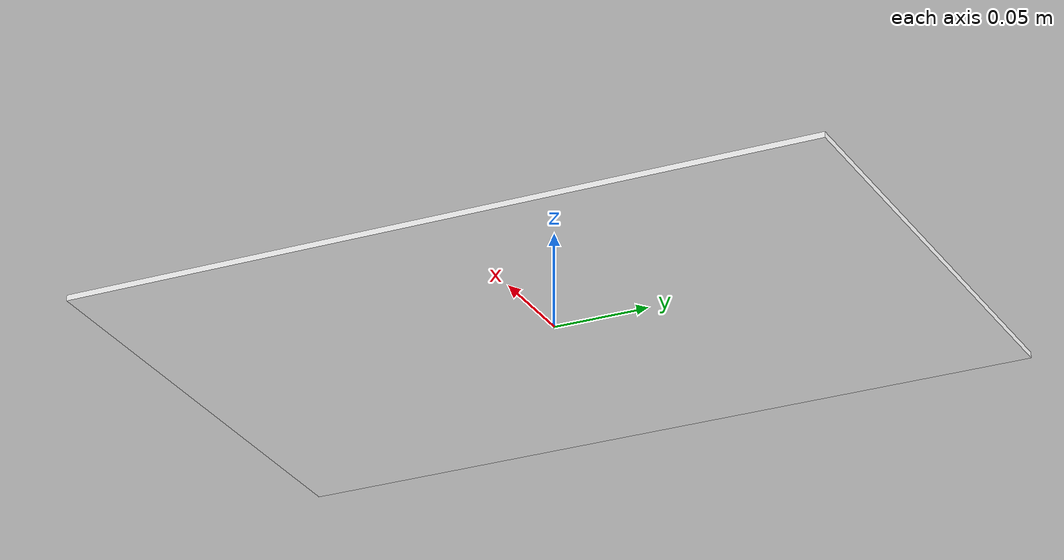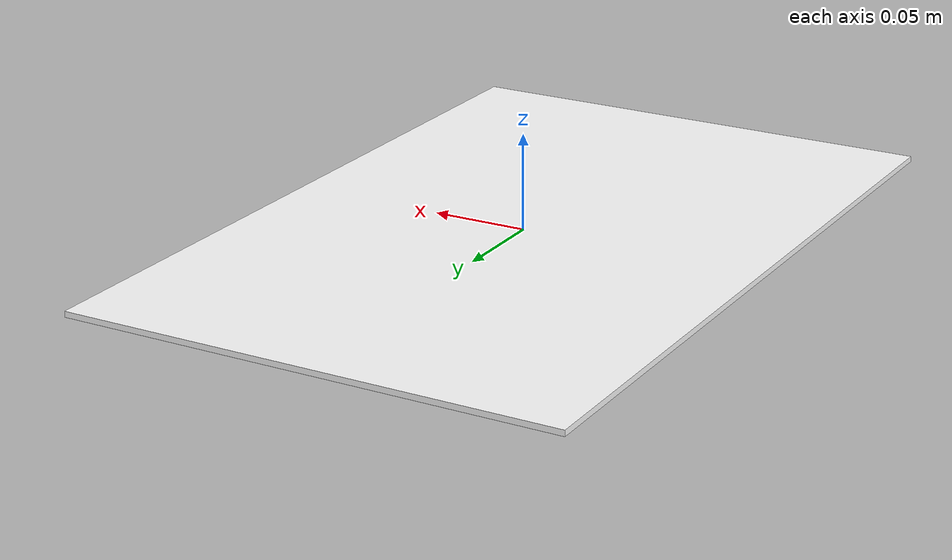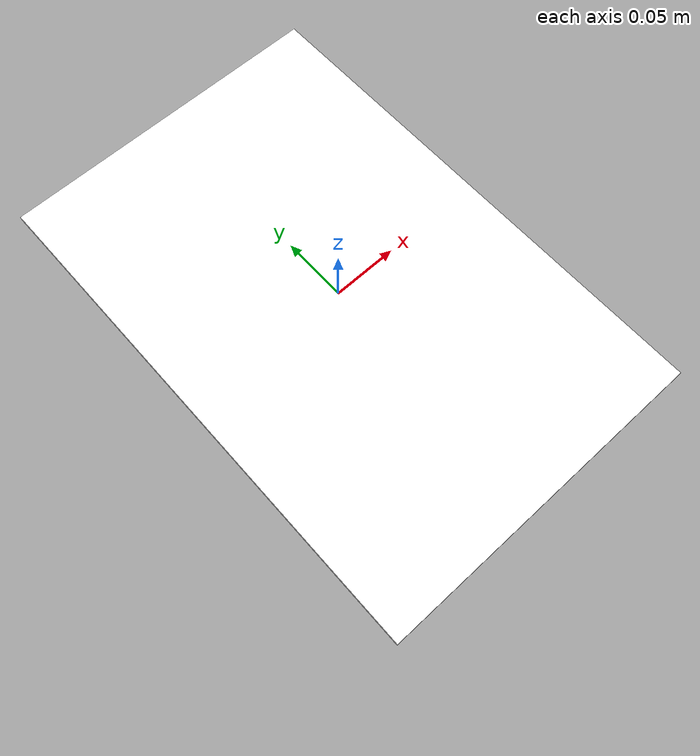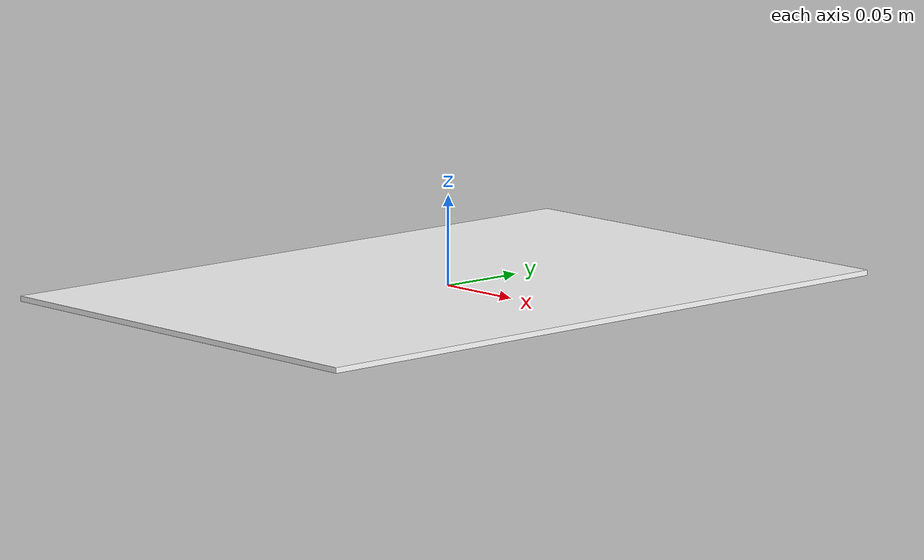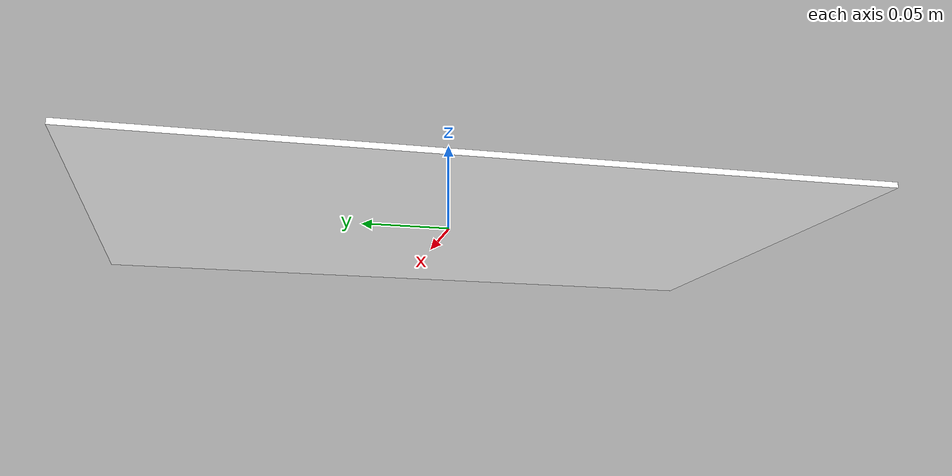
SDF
<?xml version="1.0"?>
<sdf version="1.6">
  <model name="calibration_board">

    <!-- ─── Static (non-moving) board ─────────────────────────────────── -->
    <static>true</static>

    <link name="board_link">

      <!-- ── Inertia (required even for static models in some Gazebo versions) -->
      <inertial>
        <mass>0.180</mass>
        <!-- Thin flat plate: I = m*(w²+h²)/12 -->
        <inertia>
          <ixx>0.00230</ixx>   <!-- m*(H²+T²)/12 -->
          <iyy>0.00099</iyy>   <!-- m*(W²+T²)/12 -->
          <izz>0.00326</izz>   <!-- m*(W²+H²)/12 -->
          <ixy>0</ixy>
          <ixz>0</ixz>
          <iyz>0</iyz>
        </inertia>
      </inertial>

      <!-- ── Visual: textured flat box ───────────────────────────────── -->
      <visual name="board_visual">
        <geometry>
          <box>
            <!-- X = width 258 mm, Y = height 392 mm, Z = thickness 3 mm -->
            <size>0.258 0.392 0.003</size>
          </box>
        </geometry>
        <material>
          <ambient>1 1 1 1</ambient>
          <diffuse>1 1 1 1</diffuse>
          <specular>0.1 0.1 0.1 1</specular>
          <pbr>
            <metal>
              <albedo_map>model://calibration_board/calibration_board_texture.png</albedo_map>
              <metalness>0.0</metalness>
              <roughness>0.9</roughness>
            </metal>
          </pbr>
        </material>
      </visual>

      <!-- ── Collision: same box ──────────────────────────────────────── -->
      <collision name="board_collision">
        <geometry>
          <box>
            <size>0.258 0.392 0.003</size>
          </box>
        </geometry>
        <surface>
          <contact>
            <ode>
              <kp>1e6</kp>
              <kd>100</kd>
            </ode>
          </contact>
          <friction>
            <ode>
              <mu>0.8</mu>
              <mu2>0.8</mu2>
            </ode>
          </friction>
        </surface>
      </collision>

    </link>
  </model>
</sdf>
